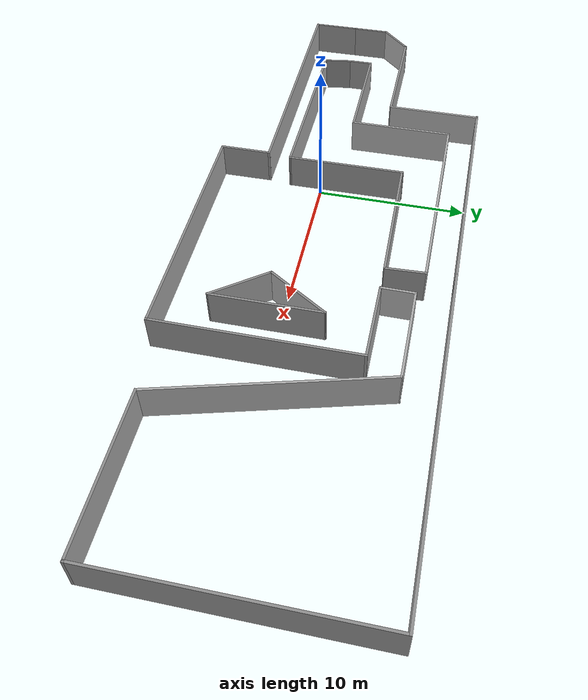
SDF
<?xml version='1.0'?>
<sdf version='1.7'>
  <model name='industrial_plant2'>
    <pose>5.94376 1.45471 0 0 -0 0</pose>
    <link name='Wall_0'>
      <collision name='Wall_0_Collision'>
        <geometry>
          <box>
            <size>1.75 0.15 2.5</size>
          </box>
        </geometry>
        <pose>0 0 1.25 0 -0 0</pose>
      </collision>
      <visual name='Wall_0_Visual'>
        <pose>0 0 1.25 0 -0 0</pose>
        <geometry>
          <box>
            <size>1.75 0.15 2.5</size>
          </box>
        </geometry>
        <material>
          <script>
            <uri>file://media/materials/scripts/gazebo.material</uri>
            <name>Gazebo/Grey</name>
          </script>
        </material>
        <meta>
          <layer>0</layer>
        </meta>
      </visual>
      <pose>-18.7966 -0.887855 0 0 -0 1.5708</pose>
    </link>
    <link name='Wall_1'>
      <collision name='Wall_1_Collision'>
        <geometry>
          <box>
            <size>7.75 0.15 2.5</size>
          </box>
        </geometry>
        <pose>0 0 1.25 0 -0 0</pose>
      </collision>
      <visual name='Wall_1_Visual'>
        <pose>0 0 1.25 0 -0 0</pose>
        <geometry>
          <box>
            <size>7.75 0.15 2.5</size>
          </box>
        </geometry>
        <material>
          <script>
            <uri>file://media/materials/scripts/gazebo.material</uri>
            <name>Gazebo/Grey</name>
          </script>
        </material>
        <meta>
          <layer>0</layer>
        </meta>
      </visual>
      <pose>-14.9966 -0.087855 0 0 -0 0</pose>
    </link>
    <link name='Wall_10'>
      <collision name='Wall_10_Collision'>
        <geometry>
          <box>
            <size>13 0.15 2.5</size>
          </box>
        </geometry>
        <pose>0 0 1.25 0 -0 0</pose>
      </collision>
      <visual name='Wall_10_Visual'>
        <pose>0 0 1.25 0 -0 0</pose>
        <geometry>
          <box>
            <size>13 0.15 2.5</size>
          </box>
        </geometry>
        <material>
          <script>
            <uri>file://media/materials/scripts/gazebo.material</uri>
            <name>Gazebo/Grey</name>
          </script>
        </material>
        <meta>
          <layer>0</layer>
        </meta>
      </visual>
      <pose>9.19615 -2.18253 0 0 -0 1.5708</pose>
    </link>
    <link name='Wall_11'>
      <collision name='Wall_11_Collision'>
        <geometry>
          <box>
            <size>5.25 0.15 2.5</size>
          </box>
        </geometry>
        <pose>0 0 1.25 0 -0 0</pose>
      </collision>
      <visual name='Wall_11_Visual'>
        <pose>0 0 1.25 0 -0 0</pose>
        <geometry>
          <box>
            <size>5.25 0.15 2.5</size>
          </box>
        </geometry>
        <material>
          <script>
            <uri>file://media/materials/scripts/gazebo.material</uri>
            <name>Gazebo/Grey</name>
          </script>
        </material>
        <meta>
          <layer>0</layer>
        </meta>
      </visual>
      <pose>6.64615 4.24247 0 0 -0 3.14159</pose>
    </link>
    <link name='Wall_13'>
      <collision name='Wall_13_Collision'>
        <geometry>
          <box>
            <size>9.10853 0.15 2.5</size>
          </box>
        </geometry>
        <pose>0 0 1.25 0 -0 0</pose>
      </collision>
      <visual name='Wall_13_Visual'>
        <pose>0 0 1.25 0 -0 0</pose>
        <geometry>
          <box>
            <size>9.10853 0.15 2.5</size>
          </box>
        </geometry>
        <material>
          <script>
            <uri>file://media/materials/scripts/gazebo.material</uri>
            <name>Gazebo/Grey</name>
          </script>
        </material>
        <meta>
          <layer>0</layer>
        </meta>
      </visual>
      <pose>-1.9766 4.16268 0 0 -0 -3.12271</pose>
    </link>
    <link name='Wall_14'>
      <collision name='Wall_14_Collision'>
        <geometry>
          <box>
            <size>7.97342 0.15 2.5</size>
          </box>
        </geometry>
        <pose>0 0 1.25 0 -0 0</pose>
      </collision>
      <visual name='Wall_14_Visual'>
        <pose>0 0 1.25 0 -0 0</pose>
        <geometry>
          <box>
            <size>7.97342 0.15 2.5</size>
          </box>
        </geometry>
        <material>
          <script>
            <uri>file://media/materials/scripts/gazebo.material</uri>
            <name>Gazebo/Grey</name>
          </script>
        </material>
        <meta>
          <layer>0</layer>
        </meta>
      </visual>
      <pose>-6.44838 0.212909 0 0 -0 -1.56909</pose>
    </link>
    <link name='Wall_15'>
      <collision name='Wall_15_Collision'>
        <geometry>
          <box>
            <size>12.2238 0.15 2.5</size>
          </box>
        </geometry>
        <pose>0 0 1.25 0 -0 0</pose>
      </collision>
      <visual name='Wall_15_Visual'>
        <pose>0 0 1.25 0 -0 0</pose>
        <geometry>
          <box>
            <size>12.2238 0.15 2.5</size>
          </box>
        </geometry>
        <material>
          <script>
            <uri>file://media/materials/scripts/gazebo.material</uri>
            <name>Gazebo/Grey</name>
          </script>
        </material>
        <meta>
          <layer>0</layer>
        </meta>
      </visual>
      <pose>-12.4784 -3.65224 0 0 -0 3.13388</pose>
    </link>
    <link name='Wall_16'>
      <collision name='Wall_16_Collision'>
        <geometry>
          <box>
            <size>2.08837 0.15 2.5</size>
          </box>
        </geometry>
        <pose>0 0 1.25 0 -0 0</pose>
      </collision>
      <visual name='Wall_16_Visual'>
        <pose>0 0 1.25 0 -0 0</pose>
        <geometry>
          <box>
            <size>2.08837 0.15 2.5</size>
          </box>
        </geometry>
        <material>
          <script>
            <uri>file://media/materials/scripts/gazebo.material</uri>
            <name>Gazebo/Grey</name>
          </script>
        </material>
        <meta>
          <layer>0</layer>
        </meta>
      </visual>
      <pose>-18.6558 -2.64677 0 0 -0 1.71652</pose>
    </link>
    <link name='Wall_19'>
      <collision name='Wall_19_Collision'>
        <geometry>
          <box>
            <size>21.5 0.15 2.5</size>
          </box>
        </geometry>
        <pose>0 0 1.25 0 -0 0</pose>
      </collision>
      <visual name='Wall_19_Visual'>
        <pose>0 0 1.25 0 -0 0</pose>
        <geometry>
          <box>
            <size>21.5 0.15 2.5</size>
          </box>
        </geometry>
        <material>
          <script>
            <uri>file://media/materials/scripts/gazebo.material</uri>
            <name>Gazebo/Grey</name>
          </script>
        </material>
        <meta>
          <layer>0</layer>
        </meta>
      </visual>
      <pose>12.8599 8.59432 0 0 -0 0</pose>
    </link>
    <link name='Wall_20'>
      <collision name='Wall_20_Collision'>
        <geometry>
          <box>
            <size>16.25 0.15 2.5</size>
          </box>
        </geometry>
        <pose>0 0 1.25 0 -0 0</pose>
      </collision>
      <visual name='Wall_20_Visual'>
        <pose>0 0 1.25 0 -0 0</pose>
        <geometry>
          <box>
            <size>16.25 0.15 2.5</size>
          </box>
        </geometry>
        <material>
          <script>
            <uri>file://media/materials/scripts/gazebo.material</uri>
            <name>Gazebo/Grey</name>
          </script>
        </material>
        <meta>
          <layer>0</layer>
        </meta>
      </visual>
      <pose>23.5349 0.544323 0 0 -0 -1.5708</pose>
    </link>
    <link name='Wall_21'>
      <collision name='Wall_21_Collision'>
        <geometry>
          <box>
            <size>9.75 0.15 2.5</size>
          </box>
        </geometry>
        <pose>0 0 1.25 0 -0 0</pose>
      </collision>
      <visual name='Wall_21_Visual'>
        <pose>0 0 1.25 0 -0 0</pose>
        <geometry>
          <box>
            <size>9.75 0.15 2.5</size>
          </box>
        </geometry>
        <material>
          <script>
            <uri>file://media/materials/scripts/gazebo.material</uri>
            <name>Gazebo/Grey</name>
          </script>
        </material>
        <meta>
          <layer>0</layer>
        </meta>
      </visual>
      <pose>18.7349 -7.50568 0 0 -0 3.14159</pose>
    </link>
    <link name='Wall_22'>
      <collision name='Wall_22_Collision'>
        <geometry>
          <box>
            <size>14.5 0.15 2.5</size>
          </box>
        </geometry>
        <pose>0 0 1.25 0 -0 0</pose>
      </collision>
      <visual name='Wall_22_Visual'>
        <pose>0 0 1.25 0 -0 0</pose>
        <geometry>
          <box>
            <size>14.5 0.15 2.5</size>
          </box>
        </geometry>
        <material>
          <pbr>
            <metal>
              <albedo_map>texture.jpg</albedo_map>
              <specular_map>texture.jpg</specular_map>
            </metal>
          </pbr>
        </material>
        <meta>
          <layer>0</layer>
        </meta>
      </visual>
      <pose>12.0779 -0.575159 0 0 -0 1.8326</pose>
    </link>
    <link name='Wall_23'>
      <collision name='Wall_23_Collision'>
        <geometry>
          <box>
            <size>6.25 0.15 2.5</size>
          </box>
        </geometry>
        <pose>0 0 1.25 0 -0 0</pose>
      </collision>
      <visual name='Wall_23_Visual'>
        <pose>0 0 1.25 0 -0 0</pose>
        <geometry>
          <box>
            <size>6.25 0.15 2.5</size>
          </box>
        </geometry>
        <material>
          <pbr>
            <metal>
              <albedo_map>texture.jpg</albedo_map>
              <specular_map>texture.jpg</specular_map>
            </metal>
          </pbr>
        </material>
        <meta>
          <layer>0</layer>
        </meta>
      </visual>
      <pose>7.17086 6.35536 0 0 -0 3.14159</pose>
    </link>
    <link name='Wall_24'>
      <collision name='Wall_24_Collision'>
        <geometry>
          <box>
            <size>2.26303 0.15 2.5</size>
          </box>
        </geometry>
        <pose>0 0 1.25 0 -0 0</pose>
      </collision>
      <visual name='Wall_24_Visual'>
        <pose>0 0 1.25 0 -0 0</pose>
        <geometry>
          <box>
            <size>2.26303 0.15 2.5</size>
          </box>
        </geometry>
        <material>
          <pbr>
            <metal>
              <albedo_map>texture.jpg</albedo_map>
              <specular_map>texture.jpg</specular_map>
            </metal>
          </pbr>
        </material>
        <meta>
          <layer>0</layer>
        </meta>
      </visual>
      <pose>4.10851 5.29892 0 0 -0 -1.58249</pose>
    </link>
    <link name='Wall_26'>
      <collision name='Wall_26_Collision'>
        <geometry>
          <box>
            <size>7 0.15 2.5</size>
          </box>
        </geometry>
        <pose>0 0 1.25 0 -0 0</pose>
      </collision>
      <visual name='Wall_26_Visual'>
        <pose>0 0 1.25 0 -0 0</pose>
        <geometry>
          <box>
            <size>7 0.15 2.5</size>
          </box>
        </geometry>
        <material>
          <pbr>
            <metal>
              <albedo_map>texture.jpg</albedo_map>
              <specular_map>texture.jpg</specular_map>
            </metal>
          </pbr>
        </material>
        <meta>
          <layer>0</layer>
        </meta>
      </visual>
      <pose>-11.1966 3.33715 0 0 -0 1.5708</pose>
    </link>
    <link name='Wall_27'>
      <collision name='Wall_27_Collision'>
        <geometry>
          <box>
            <size>13.75 0.15 2.5</size>
          </box>
        </geometry>
        <pose>0 0 1.25 0 -0 0</pose>
      </collision>
      <visual name='Wall_27_Visual'>
        <pose>0 0 1.25 0 -0 0</pose>
        <geometry>
          <box>
            <size>13.75 0.15 2.5</size>
          </box>
        </geometry>
        <material>
          <pbr>
            <metal>
              <albedo_map>texture.jpg</albedo_map>
              <specular_map>texture.jpg</specular_map>
            </metal>
          </pbr>

        </material>
        <meta>
          <layer>0</layer>
        </meta>
      </visual>
      <pose>-4.39656 6.76215 0 0 -0 0</pose>
    </link>
    <link name='Wall_29'>
      <collision name='Wall_29_Collision'>
        <geometry>
          <box>
            <size>6.43628 0.15 2.5</size>
          </box>
        </geometry>
        <pose>0 0 1.25 0 -0 0</pose>
      </collision>
      <visual name='Wall_29_Visual'>
        <pose>0 0 1.25 0 -0 0</pose>
        <geometry>
          <box>
            <size>6.43628 0.15 2.5</size>
          </box>
        </geometry>
        <material>
          <pbr>
            <metal>
              <albedo_map>texture.jpg</albedo_map>
              <specular_map>texture.jpg</specular_map>
            </metal>
          </pbr>
        </material>
        <meta>
          <layer>0</layer>
        </meta>
      </visual>
      <pose>-13.5561 5.4241 0 0 -0 1.56785</pose>
    </link>
    <link name='Wall_3'>
      <collision name='Wall_3_Collision'>
        <geometry>
          <box>
            <size>8.25 0.15 2.5</size>
          </box>
        </geometry>
        <pose>0 0 1.25 0 -0 0</pose>
      </collision>
      <visual name='Wall_3_Visual'>
        <pose>0 0 1.25 0 -0 0</pose>
        <geometry>
          <box>
            <size>8.25 0.15 2.5</size>
          </box>
        </geometry>
        <material>
          <script>
            <uri>file://media/materials/scripts/gazebo.material</uri>
            <name>Gazebo/Grey</name>
          </script>
        </material>
        <meta>
          <layer>0</layer>
        </meta>
      </visual>
      <pose>-17.6154 2.28095 0 0 -0 3.14159</pose>
    </link>
    <link name='Wall_31'>
      <collision name='Wall_31_Collision'>
        <geometry>
          <box>
            <size>15.9622 0.15 2.5</size>
          </box>
        </geometry>
        <pose>0 0 1.25 0 -0 0</pose>
      </collision>
      <visual name='Wall_31_Visual'>
        <pose>0 0 1.25 0 -0 0</pose>
        <geometry>
          <box>
            <size>15.9622 0.15 2.5</size>
          </box>
        </geometry>
        <material>
          <script>
            <uri>file://media/materials/scripts/gazebo.material</uri>
            <name>Gazebo/Grey</name>
          </script>
        </material>
        <meta>
          <layer>0</layer>
        </meta>
      </visual>
      <pose>-5.72119 8.60089 0 0 -0 3.14076</pose>
    </link>
    <link name='Wall_33'>
      <collision name='Wall_33_Collision'>
        <geometry>
          <box>
            <size>2.62032 0.15 2.5</size>
          </box>
        </geometry>
        <pose>0 0 1.25 0 -0 0</pose>
      </collision>
      <visual name='Wall_33_Visual'>
        <pose>0 0 1.25 0 -0 0</pose>
        <geometry>
          <box>
            <size>2.62032 0.15 2.5</size>
          </box>
        </geometry>
        <material>
          <script>
            <uri>file://media/materials/scripts/gazebo.material</uri>
            <name>Gazebo/Grey</name>
          </script>
        </material>
        <meta>
          <layer>0</layer>
        </meta>
      </visual>
      <pose>2.45265 5.52797 0 0 -0 1.61065</pose>
    </link>
    <link name='Wall_35'>
      <collision name='Wall_35_Collision'>
        <geometry>
          <box>
            <size>4.63765 0.15 2.5</size>
          </box>
        </geometry>
        <pose>0 0 1.25 0 -0 0</pose>
      </collision>
      <visual name='Wall_35_Visual'>
        <pose>0 0 1.25 0 -0 0</pose>
        <geometry>
          <box>
            <size>4.63765 0.15 2.5</size>
          </box>
        </geometry>
        <material>
          <script>
            <uri>file://media/materials/scripts/gazebo.material</uri>
            <name>Gazebo/Grey</name>
          </script>
        </material>
        <meta>
          <layer>0</layer>
        </meta>
      </visual>
      <pose>5.43209 -0.499336 0 0 -0 0.999219</pose>
    </link>
    <link name='Wall_36'>
      <collision name='Wall_36_Collision'>
        <geometry>
          <box>
            <size>7.20993 0.15 2.5</size>
          </box>
        </geometry>
        <pose>0 0 1.25 0 -0 0</pose>
      </collision>
      <visual name='Wall_36_Visual'>
        <pose>0 0 1.25 0 -0 0</pose>
        <geometry>
          <box>
            <size>7.20993 0.15 2.5</size>
          </box>
        </geometry>
        <material>
          <script>
            <uri>file://media/materials/scripts/gazebo.material</uri>
            <name>Gazebo/Grey</name>
          </script>
        </material>
        <meta>
          <layer>0</layer>
        </meta>
      </visual>
      <pose>6.64591 -2.14214 0 0 -0 -1.5708</pose>
    </link>
    <link name='Wall_37'>
      <collision name='Wall_37_Collision'>
        <geometry>
          <box>
            <size>4.23517 0.15 2.5</size>
          </box>
        </geometry>
        <pose>0 0 1.25 0 -0 0</pose>
      </collision>
      <visual name='Wall_37_Visual'>
        <pose>0 0 1.25 0 -0 0</pose>
        <geometry>
          <box>
            <size>4.23517 0.15 2.5</size>
          </box>
        </geometry>
        <material>
          <script>
            <uri>file://media/materials/scripts/gazebo.material</uri>
            <name>Gazebo/Grey</name>
          </script>
        </material>
        <meta>
          <layer>0</layer>
        </meta>
      </visual>
      <pose>5.43209 -4.05989 0 0 -0 2.20714</pose>
    </link>
    <link name='Wall_4'>
      <collision name='Wall_4_Collision'>
        <geometry>
          <box>
            <size>2.75 0.15 2.5</size>
          </box>
        </geometry>
        <pose>0 0 1.25 0 -0 0</pose>
      </collision>
      <visual name='Wall_4_Visual'>
        <pose>0 0 1.25 0 -0 0</pose>
        <geometry>
          <box>
            <size>2.75 0.15 2.5</size>
          </box>
        </geometry>
        <material>
          <script>
            <uri>file://media/materials/scripts/gazebo.material</uri>
            <name>Gazebo/Grey</name>
          </script>
        </material>
        <meta>
          <layer>0</layer>
        </meta>
      </visual>
      <pose>-22.5846 1.36171 0 0 -0 -2.35619</pose>
    </link>
    <link name='Wall_5'>
      <collision name='Wall_5_Collision'>
        <geometry>
          <box>
            <size>2.75 0.15 2.5</size>
          </box>
        </geometry>
        <pose>0 0 1.25 0 -0 0</pose>
      </collision>
      <visual name='Wall_5_Visual'>
        <pose>0 0 1.25 0 -0 0</pose>
        <geometry>
          <box>
            <size>2.75 0.15 2.5</size>
          </box>
        </geometry>
        <material>
          <script>
            <uri>file://media/materials/scripts/gazebo.material</uri>
            <name>Gazebo/Grey</name>
          </script>
        </material>
        <meta>
          <layer>0</layer>
        </meta>
      </visual>
      <pose>-23.5038 -0.857525 0 0 -0 -1.5708</pose>
    </link>
    <link name='Wall_6'>
      <collision name='Wall_6_Collision'>
        <geometry>
          <box>
            <size>3.25 0.15 2.5</size>
          </box>
        </geometry>
        <pose>0 0 1.25 0 -0 0</pose>
      </collision>
      <visual name='Wall_6_Visual'>
        <pose>0 0 1.25 0 -0 0</pose>
        <geometry>
          <box>
            <size>3.25 0.15 2.5</size>
          </box>
        </geometry>
        <material>
          <script>
            <uri>file://media/materials/scripts/gazebo.material</uri>
            <name>Gazebo/Grey</name>
          </script>
        </material>
        <meta>
          <layer>0</layer>
        </meta>
      </visual>
      <pose>-23.5038 -3.70752 0 0 -0 -1.5708</pose>
    </link>
    <link name='Wall_7'>
      <collision name='Wall_7_Collision'>
        <geometry>
          <box>
            <size>17 0.15 2.5</size>
          </box>
        </geometry>
        <pose>0 0 1.25 0 -0 0</pose>
      </collision>
      <visual name='Wall_7_Visual'>
        <pose>0 0 1.25 0 -0 0</pose>
        <geometry>
          <box>
            <size>17 0.15 2.5</size>
          </box>
        </geometry>
        <material>
          <script>
            <uri>file://media/materials/scripts/gazebo.material</uri>
            <name>Gazebo/Grey</name>
          </script>
        </material>
        <meta>
          <layer>0</layer>
        </meta>
      </visual>
      <pose>-15.0788 -5.25753 0 0 -0 0</pose>
    </link>
    <link name='Wall_8'>
      <collision name='Wall_8_Collision'>
        <geometry>
          <box>
            <size>3.5 0.15 2.5</size>
          </box>
        </geometry>
        <pose>0 0 1.25 0 -0 0</pose>
      </collision>
      <visual name='Wall_8_Visual'>
        <pose>0 0 1.25 0 -0 0</pose>
        <geometry>
          <box>
            <size>3.5 0.15 2.5</size>
          </box>
        </geometry>
        <material>
          <script>
            <uri>file://media/materials/scripts/gazebo.material</uri>
            <name>Gazebo/Grey</name>
          </script>
        </material>
        <meta>
          <layer>0</layer>
        </meta>
      </visual>
      <pose>-6.65385 -6.93253 0 0 -0 -1.5708</pose>
    </link>
    <link name='Wall_9'>
      <collision name='Wall_9_Collision'>
        <geometry>
          <box>
            <size>16 0.15 2.5</size>
          </box>
        </geometry>
        <pose>0 0 1.25 0 -0 0</pose>
      </collision>
      <visual name='Wall_9_Visual'>
        <pose>0 0 1.25 0 -0 0</pose>
        <geometry>
          <box>
            <size>16 0.15 2.5</size>
          </box>
        </geometry>
        <material>
          <script>
            <uri>file://media/materials/scripts/gazebo.material</uri>
            <name>Gazebo/Grey</name>
          </script>
        </material>
        <meta>
          <layer>0</layer>
        </meta>
      </visual>
      <pose>1.27115 -8.60753 0 0 -0 0</pose>
    </link>
    <static>1</static>
  </model>
</sdf>
